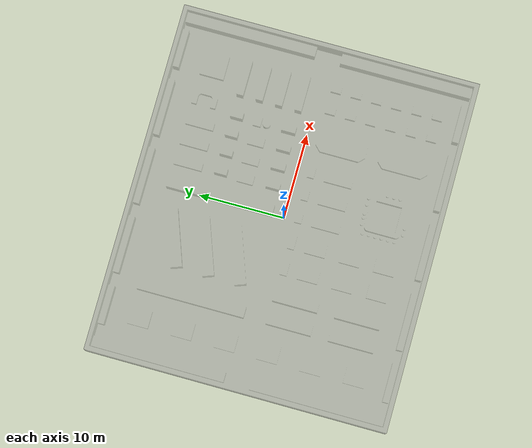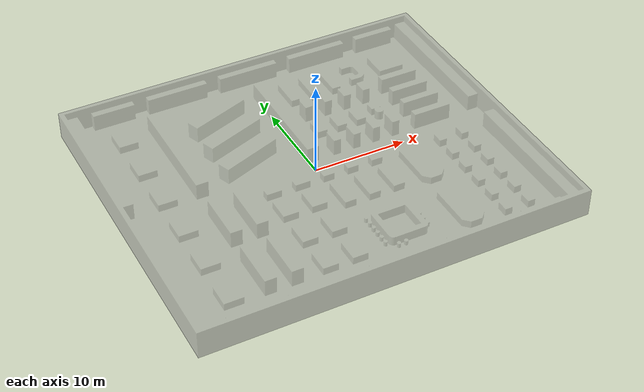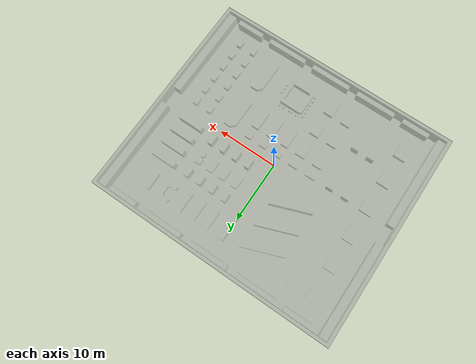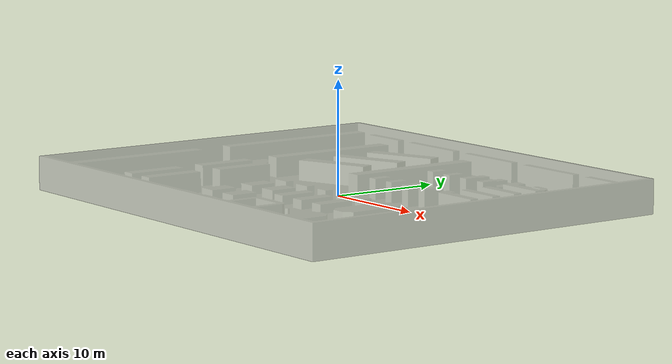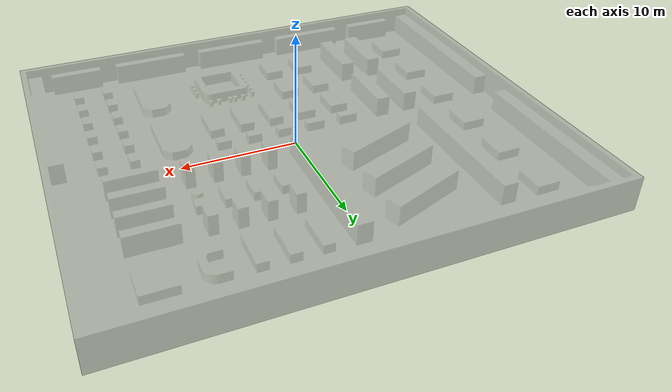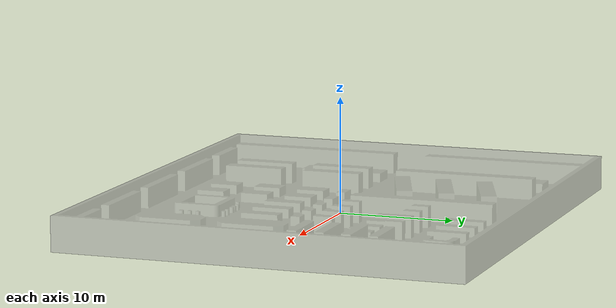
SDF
<?xml version="1.0" ?>
<sdf version="1.6">
  <model name="mall">
  <pose frame=''>0 0 0 0 0 0</pose>
    <link name="link">
      <collision name="collision">
        <geometry>
          <mesh>
            <uri>model://mall/meshes/mall.stl</uri>
          </mesh>
        </geometry>
      </collision>
      <visual name="visual">
        <geometry>
          <mesh>
            <uri>model://mall/meshes/mall.stl</uri>
          </mesh>
        </geometry>
        <material>
          <lighting>1</lighting>
          <script>
            <uri>file://media/materials/scripts/gazebo.material</uri>
            <name>Gazebo/GreyTransparent</name>
          </script>
          <ambient>0.6 0.6 0.6 1</ambient>
        </material>
      </visual>
    </link>
    <static>1</static>
  </model>

</sdf>
